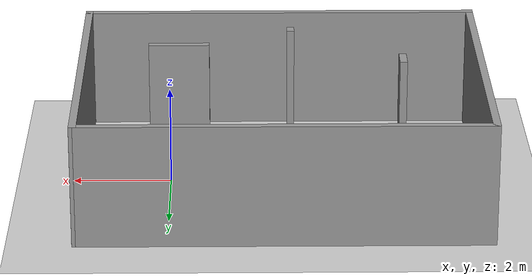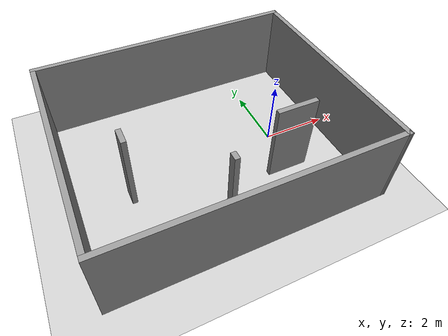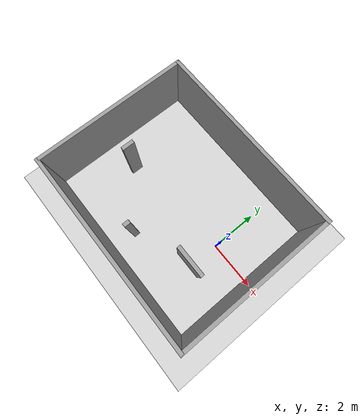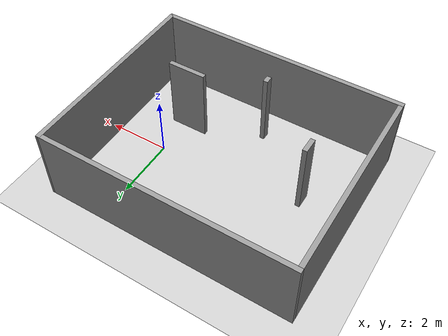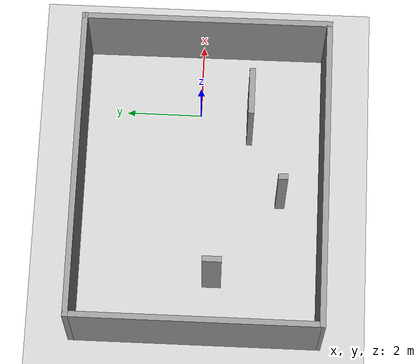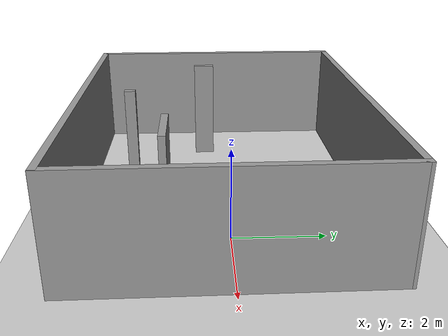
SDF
<?xml version="1.0" ?>
<sdf version="1.5">
  <world name="default">
    <include>
      <uri>model://ground_plane</uri>
    </include>
    <include>
      <uri>model://sun</uri>
    </include>

    <!-- Model: Untitled (4 large walls) -->
    <model name="Untitled">
      <static>1</static>
      <pose>-2.25983 -0.075284 0 0 0 0</pose>
      <link name="Wall_0">
        <collision name="collision">
          <geometry>
            <box>
              <size>8.25 0.15 2.5</size>
            </box>
          </geometry>
          <pose>0 0 1.25 0 0 0</pose>
          <max_contacts>10</max_contacts>
          <surface>
            <contact>
              <ode/>
            </contact>
            <bounce/>
            <friction>
              <torsional>
                <ode/>
              </torsional>
              <ode/>
            </friction>
          </surface>
        </collision>
        <visual name="visual">
          <pose>0 0 1.25 0 0 0</pose>
          <geometry>
            <box>
              <size>8.25 0.15 2.5</size>
            </box>
          </geometry>
          <material>
            <script>
              <uri>file://media/materials/scripts/gazebo.material</uri>
              <name>Gazebo/Grey</name>
            </script>
          </material>
        </visual>
        <pose>-0.010174 -3.22528 0 0 0 0</pose>
        <self_collide>0</self_collide>
        <enable_wind>0</enable_wind>
        <kinematic>0</kinematic>
      </link>
      <link name="Wall_1">
        <collision name="collision">
          <geometry>
            <box>
              <size>6.60057 0.15 2.5</size>
            </box>
          </geometry>
          <pose>0 0 1.25 0 0 0</pose>
          <max_contacts>10</max_contacts>
          <surface>
            <contact>
              <ode/>
            </contact>
            <bounce/>
            <friction>
              <torsional>
                <ode/>
              </torsional>
              <ode/>
            </friction>
          </surface>
        </collision>
        <visual name="visual">
          <pose>0 0 1.25 0 0 0</pose>
          <geometry>
            <box>
              <size>6.60057 0.15 2.5</size>
            </box>
          </geometry>
          <material>
            <script>
              <uri>file://media/materials/scripts/gazebo.material</uri>
              <name>Gazebo/Grey</name>
            </script>
          </material>
        </visual>
        <pose>4.04988 0 0 0 0 1.57391</pose>
        <self_collide>0</self_collide>
        <enable_wind>0</enable_wind>
        <kinematic>0</kinematic>
      </link>
      <link name="Wall_2">
        <collision name="collision">
          <geometry>
            <box>
              <size>8.25 0.15 2.5</size>
            </box>
          </geometry>
          <pose>0 0 1.25 0 0 0</pose>
          <max_contacts>10</max_contacts>
          <surface>
            <contact>
              <ode/>
            </contact>
            <bounce/>
            <friction>
              <torsional>
                <ode/>
              </torsional>
              <ode/>
            </friction>
          </surface>
        </collision>
        <visual name="visual">
          <pose>0 0 1.25 0 0 0</pose>
          <geometry>
            <box>
              <size>8.25 0.15 2.5</size>
            </box>
          </geometry>
          <material>
            <script>
              <uri>file://media/materials/scripts/gazebo.material</uri>
              <name>Gazebo/Grey</name>
            </script>
          </material>
        </visual>
        <pose>-0.010174 3.22528 0 0 0 3.14159</pose>
        <self_collide>0</self_collide>
        <enable_wind>0</enable_wind>
        <kinematic>0</kinematic>
      </link>
      <link name="Wall_3">
        <collision name="collision">
          <geometry>
            <box>
              <size>6.5 0.15 2.5</size>
            </box>
          </geometry>
          <pose>0 0 1.25 0 0 0</pose>
          <max_contacts>10</max_contacts>
          <surface>
            <contact>
              <ode/>
            </contact>
            <bounce/>
            <friction>
              <torsional>
                <ode/>
              </torsional>
              <ode/>
            </friction>
          </surface>
        </collision>
        <visual name="visual">
          <pose>0 0 1.25 0 0 0</pose>
          <geometry>
            <box>
              <size>6.5 0.15 2.5</size>
            </box>
          </geometry>
          <material>
            <script>
              <uri>file://media/materials/scripts/gazebo.material</uri>
              <name>Gazebo/Grey</name>
            </script>
          </material>
        </visual>
        <pose>-4.06017 0.050284 0 0 0 -1.5708</pose>
        <self_collide>0</self_collide>
        <enable_wind>0</enable_wind>
        <kinematic>0</kinematic>
      </link>
    </model>

    <!-- Model: Untitled333333 (7 smaller walls) -->
    <model name="Untitled333333">
      <static>1</static>
      <pose>-2.17549 -0.517882 0 0 0 0</pose>
      <link name="Wall_0">
        <collision name="collision">
          <geometry>
            <box>
              <size>0.25 0.15 2.5</size>
            </box>
          </geometry>
          <pose>0 0 1.25 0 0 0</pose>
          <max_contacts>10</max_contacts>
          <surface>
            <contact>
              <ode/>
            </contact>
            <bounce/>
            <friction>
              <torsional>
                <ode/>
              </torsional>
              <ode/>
            </friction>
          </surface>
        </collision>
        <visual name="visual">
          <pose>0 0 1.25 0 0 0</pose>
          <geometry>
            <box>
              <size>0.25 0.15 2.5</size>
            </box>
          </geometry>
          <material>
            <script>
              <uri>file://media/materials/scripts/gazebo.material</uri>
              <name>Gazebo/Grey</name>
            </script>
          </material>
        </visual>
        <pose>-0.300537 -1.68142 0 0 0 1.5708</pose>
        <self_collide>0</self_collide>
        <enable_wind>0</enable_wind>
        <kinematic>0</kinematic>
      </link>
      <link name="Wall_10">
        <collision name="collision">
          <geometry>
            <box>
              <size>0.5 0.15 2.5</size>
            </box>
          </geometry>
          <pose>0 0 1.25 0 0 0</pose>
          <max_contacts>10</max_contacts>
          <surface>
            <contact>
              <ode/>
            </contact>
            <bounce/>
            <friction>
              <torsional>
                <ode/>
              </torsional>
              <ode/>
            </friction>
          </surface>
        </collision>
        <visual name="visual">
          <pose>0 0 1.25 0 0 0</pose>
          <geometry>
            <box>
              <size>0.5 0.15 2.5</size>
            </box>
          </geometry>
          <material>
            <script>
              <uri>file://media/materials/scripts/gazebo.material</uri>
              <name>Gazebo/Grey</name>
            </script>
          </material>
        </visual>
        <pose>-2.56858 0.057288 0 0 0 -1.5708</pose>
        <self_collide>0</self_collide>
        <enable_wind>0</enable_wind>
        <kinematic>0</kinematic>
      </link>

      <link name="Wall_2">
        <collision name="collision">
          <geometry>
            <box>
              <size>1.25 0.15 2.5</size>
            </box>
          </geometry>
          <pose>0 0 1.25 0 0 0</pose>
          <max_contacts>10</max_contacts>
          <surface>
            <contact>
              <ode/>
            </contact>
            <bounce/>
            <friction>
              <torsional>
                <ode/>
              </torsional>
              <ode/>
            </friction>
          </surface>
        </collision>
        <visual name="visual">
          <pose>0 0 1.25 0 0 0</pose>
          <geometry>
            <box>
              <size>1.25 0.15 2.5</size>
            </box>
          </geometry>
          <material>
            <script>
              <uri>file://media/materials/scripts/gazebo.material</uri>
              <name>Gazebo/Grey</name>
            </script>
          </material>
        </visual>
        <pose>2.01857 -0.800013 0 0 0 0</pose>
        <self_collide>0</self_collide>
        <enable_wind>0</enable_wind>
        <kinematic>0</kinematic>
      </link>

    </model>
  </world>
</sdf>
